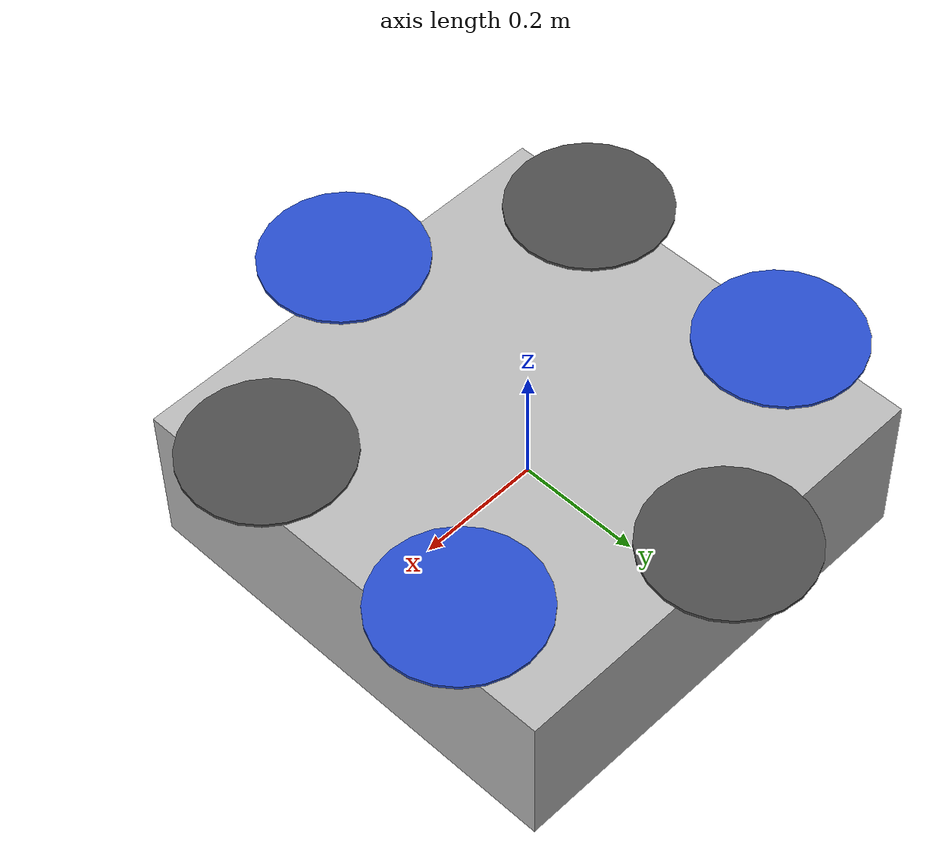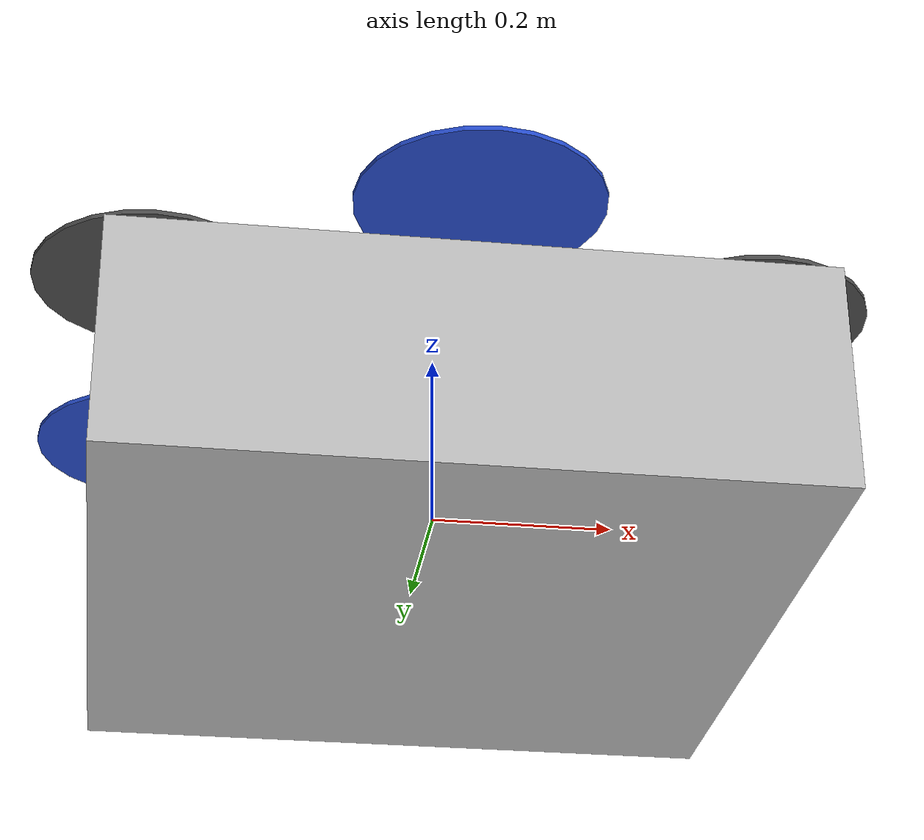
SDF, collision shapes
<sdf version='1.7'>
  <model name='sdu_drone'>
    <!-- SDU Drone body -->
    <link name='base_link'>
      <pose>0 0 0 0 -0 0</pose>
      <inertial>
        <pose>0 0 0 0 -0 0</pose>
        <mass>1.5</mass>
        <inertia>
          <ixx>0.0762625</ixx>
          <ixy>0</ixy>
          <ixz>0</ixz>
          <iyy>0.0762625</iyy>
          <iyz>0</iyz>
          <izz>0.1369</izz>
        </inertia>
      </inertial>
      <collision name='base_link_inertia_collision'>
        <pose>0 0 0 0 -0 0</pose>
        <geometry>
          <box>
            <size>0.74 0.74 0.25</size>
          </box>
        </geometry>
        <surface>
          <contact>
            <ode>
              <min_depth>0.001</min_depth>
              <max_vel>0</max_vel>
            </ode>
          </contact>
          <friction>
            <ode/>
          </friction>
        </surface>
      </collision>
      <visual name='base_link_inertia_visual'>
        <pose>0 0 0.125 0 0 0</pose>
        <geometry>
          <mesh>
            <scale>1 1 1</scale>
            <uri>model://sdu_drone/meshes/model.dae</uri>
          </mesh>
        </geometry>
      </visual>
      <gravity>1</gravity>
      <velocity_decay/>
    </link>
    <link name='/imu_link'>
      <pose>0 0 0 0 -0 0</pose>
      <inertial>
        <pose>0 0 0 0 -0 0</pose>
        <mass>0.015</mass>
        <inertia>
          <ixx>1e-05</ixx>
          <ixy>0</ixy>
          <ixz>0</ixz>
          <iyy>1e-05</iyy>
          <iyz>0</iyz>
          <izz>1e-05</izz>
        </inertia>
      </inertial>
    </link>
    <joint name='/imu_joint' type='revolute'>
      <child>/imu_link</child>
      <parent>base_link</parent>
      <axis>
        <xyz>1 0 0</xyz>
        <limit>
          <lower>0</lower>
          <upper>0</upper>
          <effort>0</effort>
          <velocity>0</velocity>
        </limit>
        <dynamics>
          <spring_reference>0</spring_reference>
          <spring_stiffness>0</spring_stiffness>
        </dynamics>
        <use_parent_model_frame>1</use_parent_model_frame>
      </axis>
    </joint>

    <!-- Rotor 0 (CW) -->
    <link name='rotor_0'>
      <pose>0.0 -0.37 0.170 0 -0 0</pose>
      <inertial>
        <pose>0 0 0 0 -0 0</pose>
        <mass>0.005</mass>
        <inertia>
          <ixx>9.75e-07</ixx>
          <ixy>0</ixy>
          <ixz>0</ixz>
          <iyy>0.000273104</iyy>
          <iyz>0</iyz>
          <izz>0.000274004</izz>
        </inertia>
      </inertial>
      <collision name='rotor_0_collision'>
        <pose>0 0 0 0 -0 0</pose>
        <geometry>
          <cylinder>
            <length>0.005</length>
            <radius>0.128</radius>
          </cylinder>
        </geometry>
        <surface>
          <contact>
            <ode/>
          </contact>
          <friction>
            <ode/>
          </friction>
        </surface>
      </collision>
      <visual name='rotor_0_visual'>
        <pose>0 0 0 0 -0 0</pose>
        <geometry>
          <mesh>
            <scale>1.5 1.5 1.5</scale>
            <uri>model://rotors_description/meshes/iris_prop_cw.dae</uri>
          </mesh>
        </geometry>
        <material>
          <script>
            <name>Gazebo/Blue</name>
            <uri>file://media/materials/scripts/gazebo.material</uri>
          </script>
        </material>
      </visual>
      <gravity>1</gravity>
      <velocity_decay/>
    </link>
    <joint name='rotor_0_joint' type='revolute'>
      <child>rotor_0</child>
      <parent>base_link</parent>
      <axis>
        <xyz>0 0 1</xyz>
        <limit>
          <lower>-1e+16</lower>
          <upper>1e+16</upper>
        </limit>
        <dynamics>
          <spring_reference>0</spring_reference>
          <spring_stiffness>0</spring_stiffness>
        </dynamics>
        <use_parent_model_frame>1</use_parent_model_frame>
      </axis>
    </joint>

    <!-- Rotor 1 (CCW) -->
    <link name='rotor_1'>
      <pose>0 0.37 0.170 0 -0 0</pose>
      <inertial>
        <pose>0 0 0 0 -0 0</pose>
        <mass>0.005</mass>
        <inertia>
          <ixx>9.75e-07</ixx>
          <ixy>0</ixy>
          <ixz>0</ixz>
          <iyy>0.000273104</iyy>
          <iyz>0</iyz>
          <izz>0.000274004</izz>
        </inertia>
      </inertial>
      <collision name='rotor_1_collision'>
        <pose>0 0 0 0 -0 0</pose>
        <geometry>
          <cylinder>
            <length>0.005</length>
            <radius>0.128</radius>
          </cylinder>
        </geometry>
        <surface>
          <contact>
            <ode/>
          </contact>
          <friction>
            <ode/>
          </friction>
        </surface>
      </collision>
      <visual name='rotor_1_visual'>
        <pose>0 0 0 0 -0 0</pose>
        <geometry>
          <mesh>
            <scale>1.5 1.5 1.5</scale>
            <uri>model://rotors_description/meshes/iris_prop_ccw.dae</uri>
          </mesh>
        </geometry>
        <material>
          <script>
            <name>Gazebo/DarkGrey</name>
            <uri>file://media/materials/scripts/gazebo.material</uri>
          </script>
        </material>
      </visual>
      <gravity>1</gravity>
      <velocity_decay/>
    </link>
    <joint name='rotor_1_joint' type='revolute'>
      <child>rotor_1</child>
      <parent>base_link</parent>
      <axis>
        <xyz>0 0 1</xyz>
        <limit>
          <lower>-1e+16</lower>
          <upper>1e+16</upper>
        </limit>
        <dynamics>
          <spring_reference>0</spring_reference>
          <spring_stiffness>0</spring_stiffness>
        </dynamics>
        <use_parent_model_frame>1</use_parent_model_frame>
      </axis>
    </joint>

    <!-- Rotor 2 (CW) -->
    <link name='rotor_2'>
      <pose>0.320429 0.185000 0.170 0 -0 0</pose>
      <inertial>
        <pose>0 0 0 0 -0 0</pose>
        <mass>0.005</mass>
        <inertia>
          <ixx>9.75e-07</ixx>
          <ixy>0</ixy>
          <ixz>0</ixz>
          <iyy>0.000273104</iyy>
          <iyz>0</iyz>
          <izz>0.000274004</izz>
        </inertia>
      </inertial>
      <collision name='rotor_2_collision'>
        <pose>0 0 0 0 -0 0</pose>
        <geometry>
          <cylinder>
            <length>0.005</length>
            <radius>0.128</radius>
          </cylinder>
        </geometry>
        <surface>
          <contact>
            <ode/>
          </contact>
          <friction>
            <ode/>
          </friction>
        </surface>
      </collision>
      <visual name='rotor_2_visual'>
        <pose>0 0 0 0 -0 0</pose>
        <geometry>
          <mesh>
            <scale>1.5 1.5 1.5</scale>
            <uri>model://rotors_description/meshes/iris_prop_cw.dae</uri>
          </mesh>
        </geometry>
        <material>
          <script>
            <name>Gazebo/Blue</name>
            <uri>file://media/materials/scripts/gazebo.material</uri>
          </script>
        </material>
      </visual>
      <gravity>1</gravity>
      <velocity_decay/>
    </link>
    <joint name='rotor_2_joint' type='revolute'>
      <child>rotor_2</child>
      <parent>base_link</parent>
      <axis>
        <xyz>0 0 1</xyz>
        <limit>
          <lower>-1e+16</lower>
          <upper>1e+16</upper>
        </limit>
        <dynamics>
          <spring_reference>0</spring_reference>
          <spring_stiffness>0</spring_stiffness>
        </dynamics>
        <use_parent_model_frame>1</use_parent_model_frame>
      </axis>
    </joint>

    <!-- Rotor 3 (CW) -->
    <link name='rotor_3'>
      <pose>-0.320429 -0.185000 0.170 0 -0 0</pose>
      <inertial>
        <pose>0 0 0 0 -0 0</pose>
        <mass>0.005</mass>
        <inertia>
          <ixx>9.75e-07</ixx>
          <ixy>0</ixy>
          <ixz>0</ixz>
          <iyy>0.000273104</iyy>
          <iyz>0</iyz>
          <izz>0.000274004</izz>
        </inertia>
      </inertial>
      <collision name='rotor_3_collision'>
        <pose>0 0 0 0 -0 0</pose>
        <geometry>
          <cylinder>
            <length>0.005</length>
            <radius>0.128</radius>
          </cylinder>
        </geometry>
        <surface>
          <contact>
            <ode/>
          </contact>
          <friction>
            <ode/>
          </friction>
        </surface>
      </collision>
      <visual name='rotor_3_visual'>
        <pose>0 0 0 0 -0 0</pose>
        <geometry>
          <mesh>
            <scale>1.5 1.5 1.5</scale>
            <uri>model://rotors_description/meshes/iris_prop_cw.dae</uri>
          </mesh>
        </geometry>
        <material>
          <script>
            <name>Gazebo/DarkGrey</name>
            <uri>file://media/materials/scripts/gazebo.material</uri>
          </script>
        </material>
      </visual>
      <gravity>1</gravity>
      <velocity_decay/>
    </link>
    <joint name='rotor_3_joint' type='revolute'>
      <child>rotor_3</child>
      <parent>base_link</parent>
      <axis>
        <xyz>0 0 1</xyz>
        <limit>
          <lower>-1e+16</lower>
          <upper>1e+16</upper>
        </limit>
        <dynamics>
          <spring_reference>0</spring_reference>
          <spring_stiffness>0</spring_stiffness>
        </dynamics>
        <use_parent_model_frame>1</use_parent_model_frame>
      </axis>
    </joint>

    <!-- Rotor 4 (CW) -->
    <link name='rotor_4'>
      <pose>0.320429 -0.185000 0.170 0 -0 0</pose>
      <inertial>
        <pose>0 0 0 0 -0 0</pose>
        <mass>0.005</mass>
        <inertia>
          <ixx>9.75e-07</ixx>
          <ixy>0</ixy>
          <ixz>0</ixz>
          <iyy>0.000273104</iyy>
          <iyz>0</iyz>
          <izz>0.000274004</izz>
        </inertia>
      </inertial>
      <collision name='rotor_4_collision'>
        <pose>0 0 0 0 -0 0</pose>
        <geometry>
          <cylinder>
            <length>0.005</length>
            <radius>0.128</radius>
          </cylinder>
        </geometry>
        <surface>
          <contact>
            <ode/>
          </contact>
          <friction>
            <ode/>
          </friction>
        </surface>
      </collision>
      <visual name='rotor_4_visual'>
        <pose>0 0 0 0 -0 0</pose>
        <geometry>
          <mesh>
            <scale>1.5 1.5 1.5</scale>
            <uri>model://rotors_description/meshes/iris_prop_cw.dae</uri>
          </mesh>
        </geometry>
        <material>
          <script>
            <name>Gazebo/DarkGrey</name>
            <uri>file://media/materials/scripts/gazebo.material</uri>
          </script>
        </material>
      </visual>
      <gravity>1</gravity>
      <velocity_decay/>
    </link>
    <joint name='rotor_4_joint' type='revolute'>
      <child>rotor_4</child>
      <parent>base_link</parent>
      <axis>
        <xyz>0 0 1</xyz>
        <limit>
          <lower>-1e+16</lower>
          <upper>1e+16</upper>
        </limit>
        <dynamics>
          <spring_reference>0</spring_reference>
          <spring_stiffness>0</spring_stiffness>
        </dynamics>
        <use_parent_model_frame>1</use_parent_model_frame>
      </axis>
    </joint>

    <!-- Rotor 5 (CCW) -->
    <link name='rotor_5'>
      <pose>-0.320429 0.185000 0.170 0 -0 0</pose>
      <inertial>
        <pose>0 0 0 0 -0 0</pose>
        <mass>0.005</mass>
        <inertia>
          <ixx>9.75e-07</ixx>
          <ixy>0</ixy>
          <ixz>0</ixz>
          <iyy>0.000273104</iyy>
          <iyz>0</iyz>
          <izz>0.000274004</izz>
        </inertia>
      </inertial>
      <collision name='rotor_5_collision'>
        <pose>0 0 0 0 -0 0</pose>
        <geometry>
          <cylinder>
            <length>0.005</length>
            <radius>0.128</radius>
          </cylinder>
        </geometry>
        <surface>
          <contact>
            <ode/>
          </contact>
          <friction>
            <ode/>
          </friction>
        </surface>
      </collision>
      <visual name='rotor_5_visual'>
        <pose>0 0 0 0 -0 0</pose>
        <geometry>
          <mesh>
            <scale>1.5 1.5 1.5</scale>
            <uri>model://rotors_description/meshes/iris_prop_cw.dae</uri>
          </mesh>
        </geometry>
        <material>
          <script>
            <name>Gazebo/Blue</name>
            <uri>file://media/materials/scripts/gazebo.material</uri>
          </script>
        </material>
      </visual>
      <gravity>1</gravity>
      <velocity_decay/>
    </link>
    <joint name='rotor_5_joint' type='revolute'>
      <child>rotor_5</child>
      <parent>base_link</parent>
      <axis>
        <xyz>0 0 1</xyz>
        <limit>
          <lower>-1e+16</lower>
          <upper>1e+16</upper>
        </limit>
        <dynamics>
          <spring_reference>0</spring_reference>
          <spring_stiffness>0</spring_stiffness>
        </dynamics>
        <use_parent_model_frame>1</use_parent_model_frame>
      </axis>
    </joint>

    <plugin name='rosbag' filename='libgazebo_multirotor_base_plugin.so'>
      <robotNamespace/>
      <linkName>base_link</linkName>
      <rotorVelocitySlowdownSim>10</rotorVelocitySlowdownSim>
    </plugin>

        <plugin name='motor_model_0' filename='libgazebo_motor_model.so'>
          <robotNamespace/>
          <jointName>rotor_0_joint</jointName>
          <linkName>rotor_0</linkName>
          <turningDirection>cw</turningDirection>
          <timeConstantUp>0.0125</timeConstantUp>
          <timeConstantDown>0.025</timeConstantDown>
          <maxRotVelocity>1100</maxRotVelocity>
          <motorConstant>8.54858e-06</motorConstant>
          <momentConstant>0.06</momentConstant>
          <commandSubTopic>/gazebo/command/motor_speed</commandSubTopic>
          <motorNumber>0</motorNumber>
          <rotorDragCoefficient>0.000806428</rotorDragCoefficient>
          <rollingMomentCoefficient>1e-06</rollingMomentCoefficient>
          <motorSpeedPubTopic>/motor_speed/0</motorSpeedPubTopic>
          <rotorVelocitySlowdownSim>10</rotorVelocitySlowdownSim>
        </plugin>
        <plugin name='motor_model_1' filename='libgazebo_motor_model.so'>
          <robotNamespace/>
          <jointName>rotor_1_joint</jointName>
          <linkName>rotor_1</linkName>
          <turningDirection>ccw</turningDirection>
          <timeConstantUp>0.0125</timeConstantUp>
          <timeConstantDown>0.025</timeConstantDown>
          <maxRotVelocity>1100</maxRotVelocity>
          <motorConstant>8.54858e-06</motorConstant>
          <momentConstant>0.06</momentConstant>
          <commandSubTopic>/gazebo/command/motor_speed</commandSubTopic>
          <motorNumber>1</motorNumber>
          <rotorDragCoefficient>0.000806428</rotorDragCoefficient>
          <rollingMomentCoefficient>1e-06</rollingMomentCoefficient>
          <motorSpeedPubTopic>/motor_speed/1</motorSpeedPubTopic>
          <rotorVelocitySlowdownSim>10</rotorVelocitySlowdownSim>
        </plugin>
        <plugin name='motor_model_2' filename='libgazebo_motor_model.so'>
          <robotNamespace/>
          <jointName>rotor_2_joint</jointName>
          <linkName>rotor_2</linkName>
          <turningDirection>cw</turningDirection>
          <timeConstantUp>0.0125</timeConstantUp>
          <timeConstantDown>0.025</timeConstantDown>
          <maxRotVelocity>1100</maxRotVelocity>
          <motorConstant>8.54858e-06</motorConstant>
          <momentConstant>0.06</momentConstant>
          <commandSubTopic>/gazebo/command/motor_speed</commandSubTopic>
          <motorNumber>2</motorNumber>
          <rotorDragCoefficient>0.000806428</rotorDragCoefficient>
          <rollingMomentCoefficient>1e-06</rollingMomentCoefficient>
          <motorSpeedPubTopic>/motor_speed/2</motorSpeedPubTopic>
          <rotorVelocitySlowdownSim>10</rotorVelocitySlowdownSim>
        </plugin>
        <plugin name='motor_model_3' filename='libgazebo_motor_model.so'>
          <robotNamespace/>
          <jointName>rotor_3_joint</jointName>
          <linkName>rotor_3</linkName>
          <turningDirection>ccw</turningDirection>
          <timeConstantUp>0.0125</timeConstantUp>
          <timeConstantDown>0.025</timeConstantDown>
          <maxRotVelocity>1100</maxRotVelocity>
          <motorConstant>8.54858e-06</motorConstant>
          <momentConstant>0.06</momentConstant>
          <commandSubTopic>/gazebo/command/motor_speed</commandSubTopic>
          <motorNumber>3</motorNumber>
          <rotorDragCoefficient>0.000806428</rotorDragCoefficient>
          <rollingMomentCoefficient>1e-06</rollingMomentCoefficient>
          <motorSpeedPubTopic>/motor_speed/3</motorSpeedPubTopic>
          <rotorVelocitySlowdownSim>10</rotorVelocitySlowdownSim>
        </plugin>
        <plugin name='motor_model_4' filename='libgazebo_motor_model.so'>
          <robotNamespace/>
          <jointName>rotor_4_joint</jointName>
          <linkName>rotor_4</linkName>
          <turningDirection>ccw</turningDirection>
          <timeConstantUp>0.0125</timeConstantUp>
          <timeConstantDown>0.025</timeConstantDown>
          <maxRotVelocity>1100</maxRotVelocity>
          <motorConstant>8.54858e-06</motorConstant>
          <momentConstant>0.06</momentConstant>
          <commandSubTopic>/gazebo/command/motor_speed</commandSubTopic>
          <motorNumber>4</motorNumber>
          <rotorDragCoefficient>0.000806428</rotorDragCoefficient>
          <rollingMomentCoefficient>1e-06</rollingMomentCoefficient>
          <motorSpeedPubTopic>/motor_speed/3</motorSpeedPubTopic>
          <rotorVelocitySlowdownSim>10</rotorVelocitySlowdownSim>
        </plugin>
        <plugin name='motor_model_5' filename='libgazebo_motor_model.so'>
          <robotNamespace/>
          <jointName>rotor_5_joint</jointName>
          <linkName>rotor_5</linkName>
          <turningDirection>cw</turningDirection>
          <timeConstantUp>0.0125</timeConstantUp>
          <timeConstantDown>0.025</timeConstantDown>
          <maxRotVelocity>1100</maxRotVelocity>
          <motorConstant>8.54858e-06</motorConstant>
          <momentConstant>0.06</momentConstant>
          <commandSubTopic>/gazebo/command/motor_speed</commandSubTopic>
          <motorNumber>5</motorNumber>
          <rotorDragCoefficient>0.000806428</rotorDragCoefficient>
          <rollingMomentCoefficient>1e-06</rollingMomentCoefficient>
          <motorSpeedPubTopic>/motor_speed/3</motorSpeedPubTopic>
          <rotorVelocitySlowdownSim>10</rotorVelocitySlowdownSim>
        </plugin>

    <model name='gps0'>
      <link name='link'>
        <pose>0 0 0.125 0 -0 0</pose>
        <inertial>
          <pose>0 0 0 0 -0 0</pose>
          <mass>0.01</mass>
          <inertia>
            <ixx>2.1733e-06</ixx>
            <ixy>0</ixy>
            <ixz>0</ixz>
            <iyy>2.1733e-06</iyy>
            <iyz>0</iyz>
            <izz>1.8e-07</izz>
          </inertia>
        </inertial>
        <visual name='visual'>
          <geometry>
            <cylinder>
              <radius>0.01</radius>
              <length>0.002</length>
            </cylinder>
          </geometry>
          <material>
            <script>
              <name>Gazebo/Black</name>
              <uri>__default__</uri>
            </script>
          </material>
        </visual>
        <sensor name='gps' type='gps'>
          <pose>0 0 0 0 -0 0</pose>
          <plugin name='gps_plugin' filename='libgazebo_gps_plugin.so'>
            <robotNamespace/>
            <gpsNoise>1</gpsNoise>
            <gpsXYRandomWalk>2.0</gpsXYRandomWalk>
            <gpsZRandomWalk>4.0</gpsZRandomWalk>
            <gpsXYNoiseDensity>0.0002</gpsXYNoiseDensity>
            <gpsZNoiseDensity>0.0004</gpsZNoiseDensity>
            <gpsVXYNoiseDensity>0.2</gpsVXYNoiseDensity>
            <gpsVZNoiseDensity>0.4</gpsVZNoiseDensity>
          </plugin>
        </sensor>
      </link>
    </model>
    <joint name='gps0_joint' type='fixed'>
      <parent>base_link</parent>
      <child>gps0::link</child>
    </joint>
    <plugin name='groundtruth_plugin' filename='libgazebo_groundtruth_plugin.so'>
      <robotNamespace/>
    </plugin>
    <plugin name='magnetometer_plugin' filename='libgazebo_magnetometer_plugin.so'>
      <robotNamespace/>
      <pubRate>20</pubRate>
      <noiseDensity>0.0004</noiseDensity>
      <randomWalk>6.4e-06</randomWalk>
      <biasCorrelationTime>600</biasCorrelationTime>
      <magTopic>/mag</magTopic>
    </plugin>

    <plugin name='barometer_plugin' filename='libgazebo_barometer_plugin.so'>
      <robotNamespace/>
      <pubRate>20</pubRate>
      <baroTopic>/baro</baroTopic>
    </plugin>

    <plugin name='parachute_plugin' filename='libgazebo_parachute_plugin.so'>
      <robotNamespace/>
      <commandSubTopic>/gazebo/command/motor_speed</commandSubTopic>
      <motorNumber>6</motorNumber>
    </plugin>

    <plugin name='mavlink_interface' filename='libgazebo_mavlink_interface.so'>
      <robotNamespace></robotNamespace>
      <imuSubTopic>/imu</imuSubTopic>
      <magSubTopic>/mag</magSubTopic>
      <baroSubTopic>/baro</baroSubTopic>
      <mavlink_addr>INADDR_ANY</mavlink_addr>
      <mavlink_udp_port>14560</mavlink_udp_port>
      <mavlink_tcp_port>4560</mavlink_tcp_port>
      <serialEnabled>false</serialEnabled>
      <serialDevice>/dev/ttyACM0</serialDevice>
      <baudRate>921600</baudRate>
      <qgc_addr>INADDR_ANY</qgc_addr>
      <qgc_udp_port>14550</qgc_udp_port>
      <sdk_addr>INADDR_ANY</sdk_addr>
      <sdk_udp_port>14540</sdk_udp_port>
      <hil_mode>0</hil_mode>
      <hil_state_level>0</hil_state_level>
      <vehicle_is_tailsitter>0</vehicle_is_tailsitter>
      <send_vision_estimation>1</send_vision_estimation>
      <send_odometry>0</send_odometry>
      <enable_lockstep>1</enable_lockstep>
      <use_tcp>1</use_tcp>
      <motorSpeedCommandPubTopic>/gazebo/command/motor_speed</motorSpeedCommandPubTopic>
      <control_channels>
        <channel name="rotor0">
          <input_index>0</input_index>
          <input_offset>0</input_offset>
          <input_scaling>1500</input_scaling>
          <zero_position_disarmed>0</zero_position_disarmed>
          <zero_position_armed>100</zero_position_armed>
          <joint_control_type>velocity</joint_control_type>
          <joint_name>rotor_0_joint</joint_name>
        </channel>
        <channel name="rotor1">
          <input_index>1</input_index>
          <input_offset>0</input_offset>
          <input_scaling>1500</input_scaling>
          <zero_position_disarmed>0</zero_position_disarmed>
          <zero_position_armed>100</zero_position_armed>
          <joint_control_type>velocity</joint_control_type>
          <joint_name>rotor_1_joint</joint_name>
        </channel>
        <channel name="rotor2">
          <input_index>2</input_index>
          <input_offset>0</input_offset>
          <input_scaling>1500</input_scaling>
          <zero_position_disarmed>0</zero_position_disarmed>
          <zero_position_armed>100</zero_position_armed>
          <joint_control_type>velocity</joint_control_type>
          <joint_name>rotor_2_joint</joint_name>
        </channel>
        <channel name="rotor3">
          <input_index>3</input_index>
          <input_offset>0</input_offset>
          <input_scaling>1500</input_scaling>
          <zero_position_disarmed>0</zero_position_disarmed>
          <zero_position_armed>100</zero_position_armed>
          <joint_control_type>velocity</joint_control_type>
          <joint_name>rotor_3_joint</joint_name>
        </channel>
        <channel name="rotor4">
          <input_index>4</input_index>
          <input_offset>0</input_offset>
          <input_scaling>1500</input_scaling>
          <zero_position_disarmed>0</zero_position_disarmed>
          <zero_position_armed>100</zero_position_armed>
          <joint_control_type>velocity</joint_control_type>
          <joint_name>rotor_4_joint</joint_name>
        </channel>
        <channel name="rotor5">
          <input_index>5</input_index>
          <input_offset>0</input_offset>
          <input_scaling>1500</input_scaling>
          <zero_position_disarmed>0</zero_position_disarmed>
          <zero_position_armed>100</zero_position_armed>
          <joint_control_type>velocity</joint_control_type>
          <joint_name>rotor_5_joint</joint_name>
        </channel>
        <channel name='aux1'>
          <input_index>6</input_index>
          <input_offset>0</input_offset>
          <input_scaling>1000</input_scaling>
          <zero_position_disarmed>0</zero_position_disarmed>
          <zero_position_armed>100</zero_position_armed>
          <joint_control_type>velocity</joint_control_type>
        </channel>
      </control_channels>
    </plugin>
    <static>0</static>
    <plugin name='gazebo_imu_plugin' filename='libgazebo_imu_plugin.so'>
      <robotNamespace></robotNamespace>
      <linkName>/imu_link</linkName>
      <imuTopic>/imu</imuTopic>
      <gyroscopeNoiseDensity>0.0003394</gyroscopeNoiseDensity>
      <gyroscopeRandomWalk>3.8785e-05</gyroscopeRandomWalk>
      <gyroscopeBiasCorrelationTime>1000.0</gyroscopeBiasCorrelationTime>
      <gyroscopeTurnOnBiasSigma>0.0087</gyroscopeTurnOnBiasSigma>
      <accelerometerNoiseDensity>0.004</accelerometerNoiseDensity>
      <accelerometerRandomWalk>0.006</accelerometerRandomWalk>
      <accelerometerBiasCorrelationTime>300.0</accelerometerBiasCorrelationTime>
      <accelerometerTurnOnBiasSigma>0.0196</accelerometerTurnOnBiasSigma>
    </plugin>

    <plugin filename="libhector_gazebo_ros_imu.so" name="quadrotor_imu_sim_0">
      <updateRate>100.0</updateRate>
      <bodyName>base_link</bodyName>
      <frameId>base_link</frameId>
      <topicName>imu0/raw_imu</topicName>
      <rpyOffset>0 0 0</rpyOffset>
      <gaussianNoise>0</gaussianNoise>
      <accelDrift>0.0 0.0 0.0</accelDrift>
      <accelGaussianNoise>0.0 0.0 0.0</accelGaussianNoise>
      <rateDrift>0.1 0.1 0.1</rateDrift>
      <rateGaussianNoise>0.05 0.05 0.015</rateGaussianNoise>
    </plugin>

    <plugin filename="libhector_gazebo_ros_magnetic.so" name="quadrotor_magnetic_sim">
      <updateRate>10.0</updateRate>
      <bodyName>base_link</bodyName>
      <frameId>base_link</frameId>
      <topicName>magnetic</topicName>
      <offset>0 0 0</offset>
      <drift>0.0 0.0 0.0</drift>
      <gaussianNoise>1.3e-2 1.3e-2 1.3e-2</gaussianNoise>
    </plugin>

    <plugin filename="libhector_gazebo_ros_gps.so" name="quadrotor_gps_sim_0">
      <updateRate>4.0</updateRate>
      <bodyName>base_link</bodyName>
      <frameId>base_link</frameId>
      <topicName>gps0/fix</topicName>
      <velocityTopicName>gps0/fix_velocity</velocityTopicName>
      <referenceLatitude>49.860246</referenceLatitude>
      <referenceLongitude>8.687077</referenceLongitude>
      <drift>5.0 5.0 5.0</drift>
      <gaussianNoise>0.01 0.01 0.01</gaussianNoise>
      <velocityDrift>0 0 0</velocityDrift>
      <velocityGaussianNoise>0.05 0.05 0.05</velocityGaussianNoise>
    </plugin>

    <plugin filename="libhector_gazebo_ros_gps.so" name="quadrotor_gps_sim_1">
      <updateRate>4.0</updateRate>
      <bodyName>base_link</bodyName>
      <frameId>base_link</frameId>
      <topicName>gps1/fix</topicName>
      <velocityTopicName>gps1/fix_velocity</velocityTopicName>
      <referenceLatitude>55.4718524</referenceLatitude>
      <referenceLongitude>10.3245895</referenceLongitude>
      <drift>5.0 5.0 5.0</drift>
      <gaussianNoise>0.01 0.01 0.01</gaussianNoise>
      <velocityDrift>0 0 0</velocityDrift>
      <velocityGaussianNoise>0.05 0.05 0.05</velocityGaussianNoise>
    </plugin>

    <plugin filename="libhector_gazebo_ros_baro.so" name="quadrotor_baro_sim">
      <updateRate>50.0</updateRate>
      <bodyName>base_link</bodyName>
      <frameId>base_link</frameId>
      <topicName>pressure_height</topicName>
      <altimeterTopicName>altimeter</altimeterTopicName>
      <offset>0</offset>
      <drift>10.0</drift>
      <gaussianNoise>0.1</gaussianNoise>
    </plugin>

    <plugin name="libgazebo_ros_p3d.so" filename="libgazebo_ros_p3d.so">
      <xyzOffsets>10 0 0</xyzOffsets>
      <rpyOffsets>0 0 0</rpyOffsets>
      <frameName>map</frameName>
      <bodyName>base_link</bodyName>
      <topicName>odom</topicName>
      <updateRate>30.0</updateRate>
    </plugin>

</model>
</sdf>
